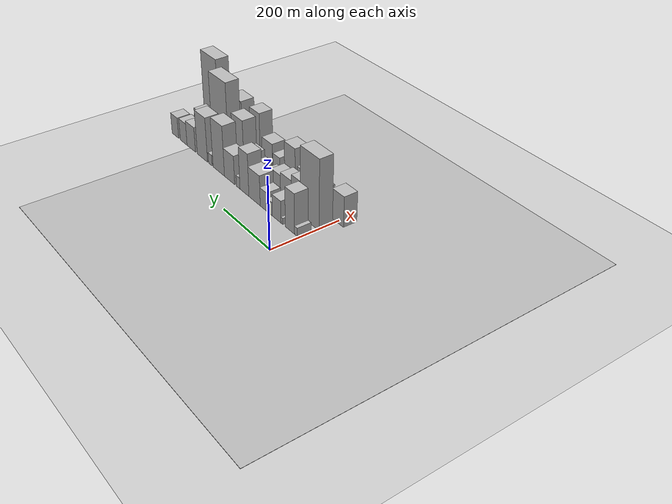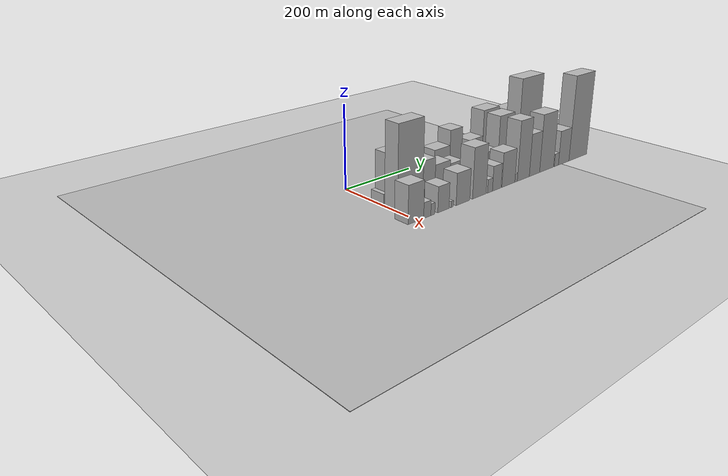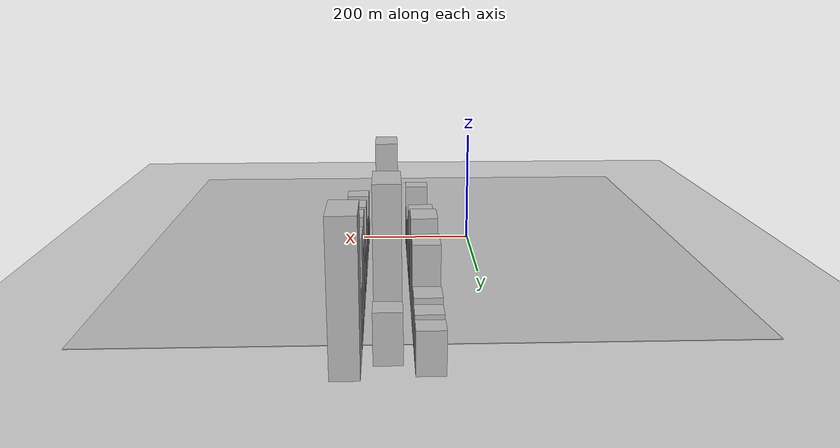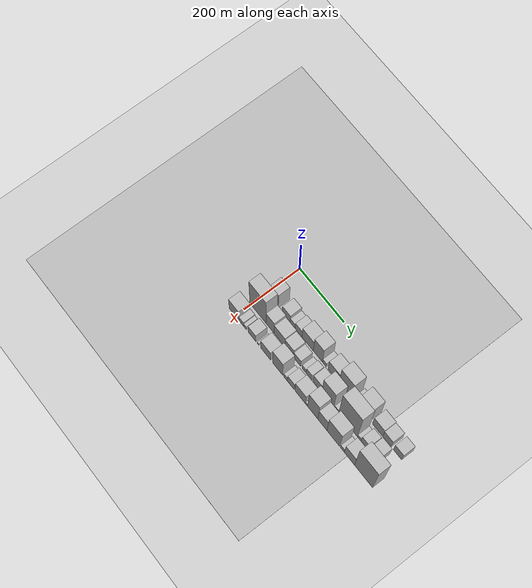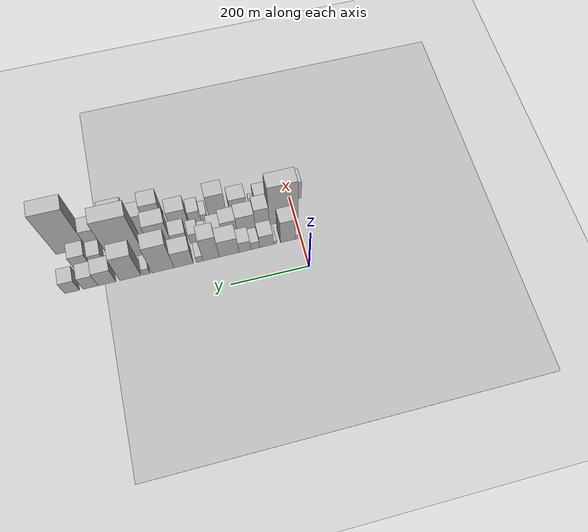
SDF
<sdf version="1.6">
 <world name="default">
  <include><name>ground_plane_1</name><uri>model://HANNAS_ground_plane</uri></include>
  <include>
   <name>ground_plane_2</name>
   <uri>model://HANNAS_ground_plane</uri>
   <pose>100 0 0  0 0 0</pose>
  </include>
  <model name="building_15">
   <static>1</static>
   <pose>100.0000 10.6982 0 0.000000 0.000000 0.000000</pose>
   <link name="link">
    <pose>0 0 12.00 0 0 0</pose>
    <collision name="collision"><geometry><box><size>40.0000 11.3315 24.0000</size></box></geometry></collision>
    <visual name="visual">
     <cast_shadows>0</cast_shadows>
     <geometry><box><size>40.0000 11.3315 24.0000</size></box></geometry>
     <material>
      <script>
       <uri>model://HANNAS_wall/materials/scripts</uri>
       <uri>model://HANNAS_wall/materials/textures</uri>
       <name>vrc/HANNAS_wall</name>
      </script>
     </material>
    </visual>
   </link>
  </model>
  <model name="building_16">
   <static>1</static>
   <pose>100.0000 35.2625 0 0.000000 0.000000 0.000000</pose>
   <link name="link">
    <pose>0 0 57.00 0 0 0</pose>
    <collision name="collision"><geometry><box><size>40.0000 37.7971 114.0000</size></box></geometry></collision>
    <visual name="visual">
     <cast_shadows>0</cast_shadows>
     <geometry><box><size>40.0000 37.7971 114.0000</size></box></geometry>
     <material>
      <script>
       <uri>model://HANNAS_wall/materials/scripts</uri>
       <uri>model://HANNAS_wall/materials/textures</uri>
       <name>vrc/HANNAS_wall</name>
      </script>
     </material>
    </visual>
   </link>
  </model>
  <model name="building_17">
   <static>1</static>
   <pose>100.0000 68.1284 0 0.000000 0.000000 0.000000</pose>
   <link name="link">
    <pose>0 0 9.00 0 0 0</pose>
    <collision name="collision"><geometry><box><size>40.0000 7.9346 18.0000</size></box></geometry></collision>
    <visual name="visual">
     <cast_shadows>0</cast_shadows>
     <geometry><box><size>40.0000 7.9346 18.0000</size></box></geometry>
     <material>
      <script>
       <uri>model://HANNAS_wall/materials/scripts</uri>
       <uri>model://HANNAS_wall/materials/textures</uri>
       <name>vrc/HANNAS_wall</name>
      </script>
     </material>
    </visual>
   </link>
  </model>
  <model name="building_18">
   <static>1</static>
   <pose>100.0000 90.3231 0 0.000000 0.000000 0.000000</pose>
   <link name="link">
    <pose>0 0 31.50 0 0 0</pose>
    <collision name="collision"><geometry><box><size>40.0000 36.4548 63.0000</size></box></geometry></collision>
    <visual name="visual">
     <cast_shadows>0</cast_shadows>
     <geometry><box><size>40.0000 36.4548 63.0000</size></box></geometry>
     <material>
      <script>
       <uri>model://HANNAS_wall/materials/scripts</uri>
       <uri>model://HANNAS_wall/materials/textures</uri>
       <name>vrc/HANNAS_wall</name>
      </script>
     </material>
    </visual>
   </link>
  </model>
  <model name="building_19">
   <static>1</static>
   <pose>100.0000 119.7356 0 0.000000 0.000000 0.000000</pose>
   <link name="link">
    <pose>0 0 19.50 0 0 0</pose>
    <collision name="collision"><geometry><box><size>40.0000 22.3701 39.0000</size></box></geometry></collision>
    <visual name="visual">
     <cast_shadows>0</cast_shadows>
     <geometry><box><size>40.0000 22.3701 39.0000</size></box></geometry>
     <material>
      <script>
       <uri>model://HANNAS_wall/materials/scripts</uri>
       <uri>model://HANNAS_wall/materials/textures</uri>
       <name>vrc/HANNAS_wall</name>
      </script>
     </material>
    </visual>
   </link>
  </model>
  <model name="building_20">
   <static>1</static>
   <pose>100.0000 146.3124 0 0.000000 0.000000 0.000000</pose>
   <link name="link">
    <pose>0 0 27.00 0 0 0</pose>
    <collision name="collision"><geometry><box><size>40.0000 30.7834 54.0000</size></box></geometry></collision>
    <visual name="visual">
     <cast_shadows>0</cast_shadows>
     <geometry><box><size>40.0000 30.7834 54.0000</size></box></geometry>
     <material>
      <script>
       <uri>model://HANNAS_wall/materials/scripts</uri>
       <uri>model://HANNAS_wall/materials/textures</uri>
       <name>vrc/HANNAS_wall</name>
      </script>
     </material>
    </visual>
   </link>
  </model>
  <model name="building_21">
   <static>1</static>
   <pose>100.0000 187.0936 0 0.000000 0.000000 0.000000</pose>
   <link name="link">
    <pose>0 0 43.50 0 0 0</pose>
    <collision name="collision"><geometry><box><size>40.0000 50.7789 87.0000</size></box></geometry></collision>
    <visual name="visual">
     <cast_shadows>0</cast_shadows>
     <geometry><box><size>40.0000 50.7789 87.0000</size></box></geometry>
     <material>
      <script>
       <uri>model://HANNAS_wall/materials/scripts</uri>
       <uri>model://HANNAS_wall/materials/textures</uri>
       <name>vrc/HANNAS_wall</name>
      </script>
     </material>
    </visual>
   </link>
  </model>
  <model name="building_22">
   <static>1</static>
   <pose>100.0000 232.9016 0 0.000000 0.000000 0.000000</pose>
   <link name="link">
    <pose>0 0 61.50 0 0 0</pose>
    <collision name="collision"><geometry><box><size>40.0000 40.8372 123.0000</size></box></geometry></collision>
    <visual name="visual">
     <cast_shadows>0</cast_shadows>
     <geometry><box><size>40.0000 40.8372 123.0000</size></box></geometry>
     <material>
      <script>
       <uri>model://HANNAS_wall/materials/scripts</uri>
       <uri>model://HANNAS_wall/materials/textures</uri>
       <name>vrc/HANNAS_wall</name>
      </script>
     </material>
    </visual>
   </link>
  </model>
  <model name="building_23">
   <static>1</static>
   <pose>100.0000 261.8302 0 0.000000 0.000000 0.000000</pose>
   <link name="link">
    <pose>0 0 16.50 0 0 0</pose>
    <collision name="collision"><geometry><box><size>40.0000 17.0200 33.0000</size></box></geometry></collision>
    <visual name="visual">
     <cast_shadows>0</cast_shadows>
     <geometry><box><size>40.0000 17.0200 33.0000</size></box></geometry>
     <material>
      <script>
       <uri>model://HANNAS_wall/materials/scripts</uri>
       <uri>model://HANNAS_wall/materials/textures</uri>
       <name>vrc/HANNAS_wall</name>
      </script>
     </material>
    </visual>
   </link>
  </model>
  <model name="building_24">
   <static>1</static>
   <pose>100.0000 302.6324 0 0.000000 0.000000 0.000000</pose>
   <link name="link">
    <pose>0 0 42.00 0 0 0</pose>
    <collision name="collision"><geometry><box><size>40.0000 48.5844 84.0000</size></box></geometry></collision>
    <visual name="visual">
     <cast_shadows>0</cast_shadows>
     <geometry><box><size>40.0000 48.5844 84.0000</size></box></geometry>
     <material>
      <script>
       <uri>model://HANNAS_wall/materials/scripts</uri>
       <uri>model://HANNAS_wall/materials/textures</uri>
       <name>vrc/HANNAS_wall</name>
      </script>
     </material>
    </visual>
   </link>
  </model>
  <model name="building_25">
   <static>1</static>
   <pose>100.0000 354.7784 0 0.000000 0.000000 0.000000</pose>
   <link name="link">
    <pose>0 0 73.50 0 0 0</pose>
    <collision name="collision"><geometry><box><size>40.0000 55.7074 147.0000</size></box></geometry></collision>
    <visual name="visual">
     <cast_shadows>0</cast_shadows>
     <geometry><box><size>40.0000 55.7074 147.0000</size></box></geometry>
     <material>
      <script>
       <uri>model://HANNAS_wall/materials/scripts</uri>
       <uri>model://HANNAS_wall/materials/textures</uri>
       <name>vrc/HANNAS_wall</name>
      </script>
     </material>
    </visual>
   </link>
  </model>
  <model name="building_26">
   <static>1</static>
   <pose>100.0000 396.5791 0 0.000000 0.000000 0.000000</pose>
   <link name="link">
    <pose>0 0 16.50 0 0 0</pose>
    <collision name="collision"><geometry><box><size>40.0000 17.8941 33.0000</size></box></geometry></collision>
    <visual name="visual">
     <cast_shadows>0</cast_shadows>
     <geometry><box><size>40.0000 17.8941 33.0000</size></box></geometry>
     <material>
      <script>
       <uri>model://HANNAS_wall/materials/scripts</uri>
       <uri>model://HANNAS_wall/materials/textures</uri>
       <name>vrc/HANNAS_wall</name>
      </script>
     </material>
    </visual>
   </link>
  </model>
  <model name="building_27">
   <static>1</static>
   <pose>100.0000 436.6432 0 0.000000 0.000000 0.000000</pose>
   <link name="link">
    <pose>0 0 66.00 0 0 0</pose>
    <collision name="collision"><geometry><box><size>40.0000 52.2340 132.0000</size></box></geometry></collision>
    <visual name="visual">
     <cast_shadows>0</cast_shadows>
     <geometry><box><size>40.0000 52.2340 132.0000</size></box></geometry>
     <material>
      <script>
       <uri>model://HANNAS_wall/materials/scripts</uri>
       <uri>model://HANNAS_wall/materials/textures</uri>
       <name>vrc/HANNAS_wall</name>
      </script>
     </material>
    </visual>
   </link>
  </model>
  <model name="building_28">
   <static>1</static>
   <pose>100.0000 494.8409 0 0.000000 0.000000 0.000000</pose>
   <link name="link">
    <pose>0 0 37.50 0 0 0</pose>
    <collision name="collision"><geometry><box><size>40.0000 44.1613 75.0000</size></box></geometry></collision>
    <visual name="visual">
     <cast_shadows>0</cast_shadows>
     <geometry><box><size>40.0000 44.1613 75.0000</size></box></geometry>
     <material>
      <script>
       <uri>model://HANNAS_wall/materials/scripts</uri>
       <uri>model://HANNAS_wall/materials/textures</uri>
       <name>vrc/HANNAS_wall</name>
      </script>
     </material>
    </visual>
   </link>
  </model>
  <model name="building_29">
   <static>1</static>
   <pose>100.0000 535.1923 0 0.000000 0.000000 0.000000</pose>
   <link name="link">
    <pose>0 0 33.00 0 0 0</pose>
    <collision name="collision"><geometry><box><size>40.0000 36.5414 66.0000</size></box></geometry></collision>
    <visual name="visual">
     <cast_shadows>0</cast_shadows>
     <geometry><box><size>40.0000 36.5414 66.0000</size></box></geometry>
     <material>
      <script>
       <uri>model://HANNAS_wall/materials/scripts</uri>
       <uri>model://HANNAS_wall/materials/textures</uri>
       <name>vrc/HANNAS_wall</name>
      </script>
     </material>
    </visual>
   </link>
  </model>
  <model name="building_30">
   <static>1</static>
   <pose>100.0000 580.3424 0 0.000000 0.000000 0.000000</pose>
   <link name="link">
    <pose>0 0 31.50 0 0 0</pose>
    <collision name="collision"><geometry><box><size>40.0000 35.7587 63.0000</size></box></geometry></collision>
    <visual name="visual">
     <cast_shadows>0</cast_shadows>
     <geometry><box><size>40.0000 35.7587 63.0000</size></box></geometry>
     <material>
      <script>
       <uri>model://HANNAS_wall/materials/scripts</uri>
       <uri>model://HANNAS_wall/materials/textures</uri>
       <name>vrc/HANNAS_wall</name>
      </script>
     </material>
    </visual>
   </link>
  </model>
  <model name="building_47">
   <static>1</static>
   <pose>155.0000 31.9254 0 0.000000 0.000000 0.000000</pose>
   <link name="link">
    <pose>0 0 99.00 0 0 0</pose>
    <collision name="collision"><geometry><box><size>40.0000 75.1230 198.0000</size></box></geometry></collision>
    <visual name="visual">
     <cast_shadows>0</cast_shadows>
     <geometry><box><size>40.0000 75.1230 198.0000</size></box></geometry>
     <material>
      <script>
       <uri>model://HANNAS_wall/materials/scripts</uri>
       <uri>model://HANNAS_wall/materials/textures</uri>
       <name>vrc/HANNAS_wall</name>
      </script>
     </material>
    </visual>
   </link>
  </model>
  <model name="building_48">
   <static>1</static>
   <pose>155.0000 88.0605 0 0.000000 0.000000 0.000000</pose>
   <link name="link">
    <pose>0 0 49.50 0 0 0</pose>
    <collision name="collision"><geometry><box><size>40.0000 37.1473 99.0000</size></box></geometry></collision>
    <visual name="visual">
     <cast_shadows>0</cast_shadows>
     <geometry><box><size>40.0000 37.1473 99.0000</size></box></geometry>
     <material>
      <script>
       <uri>model://HANNAS_wall/materials/scripts</uri>
       <uri>model://HANNAS_wall/materials/textures</uri>
       <name>vrc/HANNAS_wall</name>
      </script>
     </material>
    </visual>
   </link>
  </model>
  <model name="building_49">
   <static>1</static>
   <pose>155.0000 130.4481 0 0.000000 0.000000 0.000000</pose>
   <link name="link">
    <pose>0 0 40.50 0 0 0</pose>
    <collision name="collision"><geometry><box><size>40.0000 47.6279 81.0000</size></box></geometry></collision>
    <visual name="visual">
     <cast_shadows>0</cast_shadows>
     <geometry><box><size>40.0000 47.6279 81.0000</size></box></geometry>
     <material>
      <script>
       <uri>model://HANNAS_wall/materials/scripts</uri>
       <uri>model://HANNAS_wall/materials/textures</uri>
       <name>vrc/HANNAS_wall</name>
      </script>
     </material>
    </visual>
   </link>
  </model>
  <model name="building_50">
   <static>1</static>
   <pose>155.0000 174.0246 0 0.000000 0.000000 0.000000</pose>
   <link name="link">
    <pose>0 0 36.00 0 0 0</pose>
    <collision name="collision"><geometry><box><size>40.0000 39.5250 72.0000</size></box></geometry></collision>
    <visual name="visual">
     <cast_shadows>0</cast_shadows>
     <geometry><box><size>40.0000 39.5250 72.0000</size></box></geometry>
     <material>
      <script>
       <uri>model://HANNAS_wall/materials/scripts</uri>
       <uri>model://HANNAS_wall/materials/textures</uri>
       <name>vrc/HANNAS_wall</name>
      </script>
     </material>
    </visual>
   </link>
  </model>
  <model name="building_51">
   <static>1</static>
   <pose>155.0000 209.7102 0 0.000000 0.000000 0.000000</pose>
   <link name="link">
    <pose>0 0 27.00 0 0 0</pose>
    <collision name="collision"><geometry><box><size>40.0000 31.8461 54.0000</size></box></geometry></collision>
    <visual name="visual">
     <cast_shadows>0</cast_shadows>
     <geometry><box><size>40.0000 31.8461 54.0000</size></box></geometry>
     <material>
      <script>
       <uri>model://HANNAS_wall/materials/scripts</uri>
       <uri>model://HANNAS_wall/materials/textures</uri>
       <name>vrc/HANNAS_wall</name>
      </script>
     </material>
    </visual>
   </link>
  </model>
  <model name="building_52">
   <static>1</static>
   <pose>155.0000 240.8804 0 0.000000 0.000000 0.000000</pose>
   <link name="link">
    <pose>0 0 16.50 0 0 0</pose>
    <collision name="collision"><geometry><box><size>40.0000 18.4943 33.0000</size></box></geometry></collision>
    <visual name="visual">
     <cast_shadows>0</cast_shadows>
     <geometry><box><size>40.0000 18.4943 33.0000</size></box></geometry>
     <material>
      <script>
       <uri>model://HANNAS_wall/materials/scripts</uri>
       <uri>model://HANNAS_wall/materials/textures</uri>
       <name>vrc/HANNAS_wall</name>
      </script>
     </material>
    </visual>
   </link>
  </model>
  <model name="building_53">
   <static>1</static>
   <pose>155.0000 262.9508 0 0.000000 0.000000 0.000000</pose>
   <link name="link">
    <pose>0 0 25.50 0 0 0</pose>
    <collision name="collision"><geometry><box><size>40.0000 25.6466 51.0000</size></box></geometry></collision>
    <visual name="visual">
     <cast_shadows>0</cast_shadows>
     <geometry><box><size>40.0000 25.6466 51.0000</size></box></geometry>
     <material>
      <script>
       <uri>model://HANNAS_wall/materials/scripts</uri>
       <uri>model://HANNAS_wall/materials/textures</uri>
       <name>vrc/HANNAS_wall</name>
      </script>
     </material>
    </visual>
   </link>
  </model>
  <model name="building_54">
   <static>1</static>
   <pose>155.0000 300.0967 0 0.000000 0.000000 0.000000</pose>
   <link name="link">
    <pose>0 0 34.50 0 0 0</pose>
    <collision name="collision"><geometry><box><size>40.0000 38.6452 69.0000</size></box></geometry></collision>
    <visual name="visual">
     <cast_shadows>0</cast_shadows>
     <geometry><box><size>40.0000 38.6452 69.0000</size></box></geometry>
     <material>
      <script>
       <uri>model://HANNAS_wall/materials/scripts</uri>
       <uri>model://HANNAS_wall/materials/textures</uri>
       <name>vrc/HANNAS_wall</name>
      </script>
     </material>
    </visual>
   </link>
  </model>
  <model name="building_55">
   <static>1</static>
   <pose>155.0000 345.8321 0 0.000000 0.000000 0.000000</pose>
   <link name="link">
    <pose>0 0 73.50 0 0 0</pose>
    <collision name="collision"><geometry><box><size>40.0000 52.8255 147.0000</size></box></geometry></collision>
    <visual name="visual">
     <cast_shadows>0</cast_shadows>
     <geometry><box><size>40.0000 52.8255 147.0000</size></box></geometry>
     <material>
      <script>
       <uri>model://HANNAS_wall/materials/scripts</uri>
       <uri>model://HANNAS_wall/materials/textures</uri>
       <name>vrc/HANNAS_wall</name>
      </script>
     </material>
    </visual>
   </link>
  </model>
  <model name="building_56">
   <static>1</static>
   <pose>155.0000 382.9494 0 0.000000 0.000000 0.000000</pose>
   <link name="link">
    <pose>0 0 15.00 0 0 0</pose>
    <collision name="collision"><geometry><box><size>40.0000 15.4090 30.0000</size></box></geometry></collision>
    <visual name="visual">
     <cast_shadows>0</cast_shadows>
     <geometry><box><size>40.0000 15.4090 30.0000</size></box></geometry>
     <material>
      <script>
       <uri>model://HANNAS_wall/materials/scripts</uri>
       <uri>model://HANNAS_wall/materials/textures</uri>
       <name>vrc/HANNAS_wall</name>
      </script>
     </material>
    </visual>
   </link>
  </model>
  <model name="building_57">
   <static>1</static>
   <pose>155.0000 434.5198 0 0.000000 0.000000 0.000000</pose>
   <link name="link">
    <pose>0 0 111.00 0 0 0</pose>
    <collision name="collision"><geometry><box><size>40.0000 81.7319 222.0000</size></box></geometry></collision>
    <visual name="visual">
     <cast_shadows>0</cast_shadows>
     <geometry><box><size>40.0000 81.7319 222.0000</size></box></geometry>
     <material>
      <script>
       <uri>model://HANNAS_wall/materials/scripts</uri>
       <uri>model://HANNAS_wall/materials/textures</uri>
       <name>vrc/HANNAS_wall</name>
      </script>
     </material>
    </visual>
   </link>
  </model>
  <model name="building_58">
   <static>1</static>
   <pose>155.0000 481.7972 0 0.000000 0.000000 0.000000</pose>
   <link name="link">
    <pose>0 0 13.50 0 0 0</pose>
    <collision name="collision"><geometry><box><size>40.0000 12.8229 27.0000</size></box></geometry></collision>
    <visual name="visual">
     <cast_shadows>0</cast_shadows>
     <geometry><box><size>40.0000 12.8229 27.0000</size></box></geometry>
     <material>
      <script>
       <uri>model://HANNAS_wall/materials/scripts</uri>
       <uri>model://HANNAS_wall/materials/textures</uri>
       <name>vrc/HANNAS_wall</name>
      </script>
     </material>
    </visual>
   </link>
  </model>
  <model name="building_59">
   <static>1</static>
   <pose>155.0000 507.4609 0 0.000000 0.000000 0.000000</pose>
   <link name="link">
    <pose>0 0 30.00 0 0 0</pose>
    <collision name="collision"><geometry><box><size>40.0000 32.5046 60.0000</size></box></geometry></collision>
    <visual name="visual">
     <cast_shadows>0</cast_shadows>
     <geometry><box><size>40.0000 32.5046 60.0000</size></box></geometry>
     <material>
      <script>
       <uri>model://HANNAS_wall/materials/scripts</uri>
       <uri>model://HANNAS_wall/materials/textures</uri>
       <name>vrc/HANNAS_wall</name>
      </script>
     </material>
    </visual>
   </link>
  </model>
  <model name="building_60">
   <static>1</static>
   <pose>155.0000 546.4655 0 0.000000 0.000000 0.000000</pose>
   <link name="link">
    <pose>0 0 37.50 0 0 0</pose>
    <collision name="collision"><geometry><box><size>40.0000 39.5046 75.0000</size></box></geometry></collision>
    <visual name="visual">
     <cast_shadows>0</cast_shadows>
     <geometry><box><size>40.0000 39.5046 75.0000</size></box></geometry>
     <material>
      <script>
       <uri>model://HANNAS_wall/materials/scripts</uri>
       <uri>model://HANNAS_wall/materials/textures</uri>
       <name>vrc/HANNAS_wall</name>
      </script>
     </material>
    </visual>
   </link>
  </model>
  <model name="building_79">
   <static>1</static>
   <pose>210.0000 -6.1846 0 0.000000 0.000000 0.000000</pose>
   <link name="link">
    <pose>0 0 43.50 0 0 0</pose>
    <collision name="collision"><geometry><box><size>40.0000 45.5531 87.0000</size></box></geometry></collision>
    <visual name="visual">
     <cast_shadows>0</cast_shadows>
     <geometry><box><size>40.0000 45.5531 87.0000</size></box></geometry>
     <material>
      <script>
       <uri>model://HANNAS_wall/materials/scripts</uri>
       <uri>model://HANNAS_wall/materials/textures</uri>
       <name>vrc/HANNAS_wall</name>
      </script>
     </material>
    </visual>
   </link>
  </model>
  <model name="building_80">
   <static>1</static>
   <pose>210.0000 27.1518 0 0.000000 0.000000 0.000000</pose>
   <link name="link">
    <pose>0 0 18.00 0 0 0</pose>
    <collision name="collision"><geometry><box><size>40.0000 21.1197 36.0000</size></box></geometry></collision>
    <visual name="visual">
     <cast_shadows>0</cast_shadows>
     <geometry><box><size>40.0000 21.1197 36.0000</size></box></geometry>
     <material>
      <script>
       <uri>model://HANNAS_wall/materials/scripts</uri>
       <uri>model://HANNAS_wall/materials/textures</uri>
       <name>vrc/HANNAS_wall</name>
      </script>
     </material>
    </visual>
   </link>
  </model>
  <model name="building_81">
   <static>1</static>
   <pose>210.0000 43.7896 0 0.000000 0.000000 0.000000</pose>
   <link name="link">
    <pose>0 0 13.50 0 0 0</pose>
    <collision name="collision"><geometry><box><size>40.0000 12.1557 27.0000</size></box></geometry></collision>
    <visual name="visual">
     <cast_shadows>0</cast_shadows>
     <geometry><box><size>40.0000 12.1557 27.0000</size></box></geometry>
     <material>
      <script>
       <uri>model://HANNAS_wall/materials/scripts</uri>
       <uri>model://HANNAS_wall/materials/textures</uri>
       <name>vrc/HANNAS_wall</name>
      </script>
     </material>
    </visual>
   </link>
  </model>
  <model name="building_82">
   <static>1</static>
   <pose>210.0000 76.2873 0 0.000000 0.000000 0.000000</pose>
   <link name="link">
    <pose>0 0 30.00 0 0 0</pose>
    <collision name="collision"><geometry><box><size>40.0000 34.8398 60.0000</size></box></geometry></collision>
    <visual name="visual">
     <cast_shadows>0</cast_shadows>
     <geometry><box><size>40.0000 34.8398 60.0000</size></box></geometry>
     <material>
      <script>
       <uri>model://HANNAS_wall/materials/scripts</uri>
       <uri>model://HANNAS_wall/materials/textures</uri>
       <name>vrc/HANNAS_wall</name>
      </script>
     </material>
    </visual>
   </link>
  </model>
  <model name="building_83">
   <static>1</static>
   <pose>210.0000 103.3612 0 0.000000 0.000000 0.000000</pose>
   <link name="link">
    <pose>0 0 7.50 0 0 0</pose>
    <collision name="collision"><geometry><box><size>40.0000 7.3080 15.0000</size></box></geometry></collision>
    <visual name="visual">
     <cast_shadows>0</cast_shadows>
     <geometry><box><size>40.0000 7.3080 15.0000</size></box></geometry>
     <material>
      <script>
       <uri>model://HANNAS_wall/materials/scripts</uri>
       <uri>model://HANNAS_wall/materials/textures</uri>
       <name>vrc/HANNAS_wall</name>
      </script>
     </material>
    </visual>
   </link>
  </model>
  <model name="building_84">
   <static>1</static>
   <pose>210.0000 138.1496 0 0.000000 0.000000 0.000000</pose>
   <link name="link">
    <pose>0 0 37.50 0 0 0</pose>
    <collision name="collision"><geometry><box><size>40.0000 44.2688 75.0000</size></box></geometry></collision>
    <visual name="visual">
     <cast_shadows>0</cast_shadows>
     <geometry><box><size>40.0000 44.2688 75.0000</size></box></geometry>
     <material>
      <script>
       <uri>model://HANNAS_wall/materials/scripts</uri>
       <uri>model://HANNAS_wall/materials/textures</uri>
       <name>vrc/HANNAS_wall</name>
      </script>
     </material>
    </visual>
   </link>
  </model>
  <model name="building_85">
   <static>1</static>
   <pose>210.0000 192.1983 0 0.000000 0.000000 0.000000</pose>
   <link name="link">
    <pose>0 0 60.00 0 0 0</pose>
    <collision name="collision"><geometry><box><size>40.0000 45.8285 120.0000</size></box></geometry></collision>
    <visual name="visual">
     <cast_shadows>0</cast_shadows>
     <geometry><box><size>40.0000 45.8285 120.0000</size></box></geometry>
     <material>
      <script>
       <uri>model://HANNAS_wall/materials/scripts</uri>
       <uri>model://HANNAS_wall/materials/textures</uri>
       <name>vrc/HANNAS_wall</name>
      </script>
     </material>
    </visual>
   </link>
  </model>
  <model name="building_86">
   <static>1</static>
   <pose>210.0000 228.5575 0 0.000000 0.000000 0.000000</pose>
   <link name="link">
    <pose>0 0 16.50 0 0 0</pose>
    <collision name="collision"><geometry><box><size>40.0000 16.8899 33.0000</size></box></geometry></collision>
    <visual name="visual">
     <cast_shadows>0</cast_shadows>
     <geometry><box><size>40.0000 16.8899 33.0000</size></box></geometry>
     <material>
      <script>
       <uri>model://HANNAS_wall/materials/scripts</uri>
       <uri>model://HANNAS_wall/materials/textures</uri>
       <name>vrc/HANNAS_wall</name>
      </script>
     </material>
    </visual>
   </link>
  </model>
  <model name="building_87">
   <static>1</static>
   <pose>210.0000 252.0326 0 0.000000 0.000000 0.000000</pose>
   <link name="link">
    <pose>0 0 30.00 0 0 0</pose>
    <collision name="collision"><geometry><box><size>40.0000 30.0604 60.0000</size></box></geometry></collision>
    <visual name="visual">
     <cast_shadows>0</cast_shadows>
     <geometry><box><size>40.0000 30.0604 60.0000</size></box></geometry>
     <material>
      <script>
       <uri>model://HANNAS_wall/materials/scripts</uri>
       <uri>model://HANNAS_wall/materials/textures</uri>
       <name>vrc/HANNAS_wall</name>
      </script>
     </material>
    </visual>
   </link>
  </model>
  <model name="building_88">
   <static>1</static>
   <pose>210.0000 293.6384 0 0.000000 0.000000 0.000000</pose>
   <link name="link">
    <pose>0 0 42.00 0 0 0</pose>
    <collision name="collision"><geometry><box><size>40.0000 47.1512 84.0000</size></box></geometry></collision>
    <visual name="visual">
     <cast_shadows>0</cast_shadows>
     <geometry><box><size>40.0000 47.1512 84.0000</size></box></geometry>
     <material>
      <script>
       <uri>model://HANNAS_wall/materials/scripts</uri>
       <uri>model://HANNAS_wall/materials/textures</uri>
       <name>vrc/HANNAS_wall</name>
      </script>
     </material>
    </visual>
   </link>
  </model>
  <model name="building_89">
   <static>1</static>
   <pose>210.0000 321.8126 0 0.000000 0.000000 0.000000</pose>
   <link name="link">
    <pose>0 0 10.50 0 0 0</pose>
    <collision name="collision"><geometry><box><size>40.0000 9.1971 21.0000</size></box></geometry></collision>
    <visual name="visual">
     <cast_shadows>0</cast_shadows>
     <geometry><box><size>40.0000 9.1971 21.0000</size></box></geometry>
     <material>
      <script>
       <uri>model://HANNAS_wall/materials/scripts</uri>
       <uri>model://HANNAS_wall/materials/textures</uri>
       <name>vrc/HANNAS_wall</name>
      </script>
     </material>
    </visual>
   </link>
  </model>
  <model name="building_90">
   <static>1</static>
   <pose>210.0000 348.9491 0 0.000000 0.000000 0.000000</pose>
   <link name="link">
    <pose>0 0 73.50 0 0 0</pose>
    <collision name="collision"><geometry><box><size>40.0000 45.0758 147.0000</size></box></geometry></collision>
    <visual name="visual">
     <cast_shadows>0</cast_shadows>
     <geometry><box><size>40.0000 45.0758 147.0000</size></box></geometry>
     <material>
      <script>
       <uri>model://HANNAS_wall/materials/scripts</uri>
       <uri>model://HANNAS_wall/materials/textures</uri>
       <name>vrc/HANNAS_wall</name>
      </script>
     </material>
    </visual>
   </link>
  </model>
  <model name="building_91">
   <static>1</static>
   <pose>210.0000 391.4103 0 0.000000 0.000000 0.000000</pose>
   <link name="link">
    <pose>0 0 52.50 0 0 0</pose>
    <collision name="collision"><geometry><box><size>40.0000 39.8467 105.0000</size></box></geometry></collision>
    <visual name="visual">
     <cast_shadows>0</cast_shadows>
     <geometry><box><size>40.0000 39.8467 105.0000</size></box></geometry>
     <material>
      <script>
       <uri>model://HANNAS_wall/materials/scripts</uri>
       <uri>model://HANNAS_wall/materials/textures</uri>
       <name>vrc/HANNAS_wall</name>
      </script>
     </material>
    </visual>
   </link>
  </model>
  <model name="building_92">
   <static>1</static>
   <pose>210.0000 439.1455 0 0.000000 0.000000 0.000000</pose>
   <link name="link">
    <pose>0 0 72.00 0 0 0</pose>
    <collision name="collision"><geometry><box><size>40.0000 55.6236 144.0000</size></box></geometry></collision>
    <visual name="visual">
     <cast_shadows>0</cast_shadows>
     <geometry><box><size>40.0000 55.6236 144.0000</size></box></geometry>
     <material>
      <script>
       <uri>model://HANNAS_wall/materials/scripts</uri>
       <uri>model://HANNAS_wall/materials/textures</uri>
       <name>vrc/HANNAS_wall</name>
      </script>
     </material>
    </visual>
   </link>
  </model>
  <model name="building_93">
   <static>1</static>
   <pose>210.0000 478.5352 0 0.000000 0.000000 0.000000</pose>
   <link name="link">
    <pose>0 0 16.50 0 0 0</pose>
    <collision name="collision"><geometry><box><size>40.0000 17.1558 33.0000</size></box></geometry></collision>
    <visual name="visual">
     <cast_shadows>0</cast_shadows>
     <geometry><box><size>40.0000 17.1558 33.0000</size></box></geometry>
     <material>
      <script>
       <uri>model://HANNAS_wall/materials/scripts</uri>
       <uri>model://HANNAS_wall/materials/textures</uri>
       <name>vrc/HANNAS_wall</name>
      </script>
     </material>
    </visual>
   </link>
  </model>
  <model name="building_94">
   <static>1</static>
   <pose>210.0000 509.0642 0 0.000000 0.000000 0.000000</pose>
   <link name="link">
    <pose>0 0 43.50 0 0 0</pose>
    <collision name="collision"><geometry><box><size>40.0000 43.9022 87.0000</size></box></geometry></collision>
    <visual name="visual">
     <cast_shadows>0</cast_shadows>
     <geometry><box><size>40.0000 43.9022 87.0000</size></box></geometry>
     <material>
      <script>
       <uri>model://HANNAS_wall/materials/scripts</uri>
       <uri>model://HANNAS_wall/materials/textures</uri>
       <name>vrc/HANNAS_wall</name>
      </script>
     </material>
    </visual>
   </link>
  </model>
  <model name="building_95">
   <static>1</static>
   <pose>210.0000 569.5310 0 0.000000 0.000000 0.000000</pose>
   <link name="link">
    <pose>0 0 108.00 0 0 0</pose>
    <collision name="collision"><geometry><box><size>40.0000 77.0313 216.0000</size></box></geometry></collision>
    <visual name="visual">
     <cast_shadows>0</cast_shadows>
     <geometry><box><size>40.0000 77.0313 216.0000</size></box></geometry>
     <material>
      <script>
       <uri>model://HANNAS_wall/materials/scripts</uri>
       <uri>model://HANNAS_wall/materials/textures</uri>
       <name>vrc/HANNAS_wall</name>
      </script>
     </material>
    </visual>
   </link>
  </model>
 </world>
</sdf>
